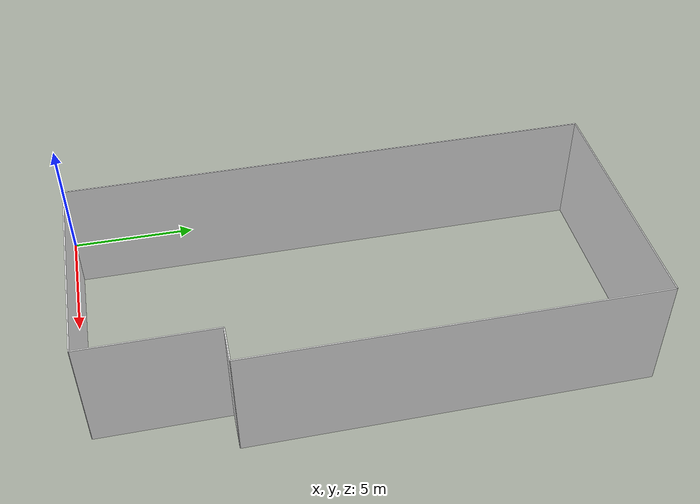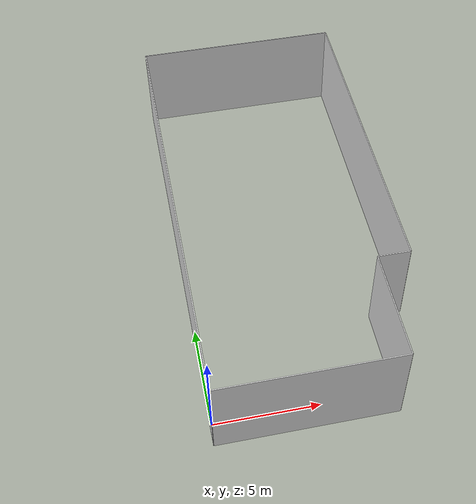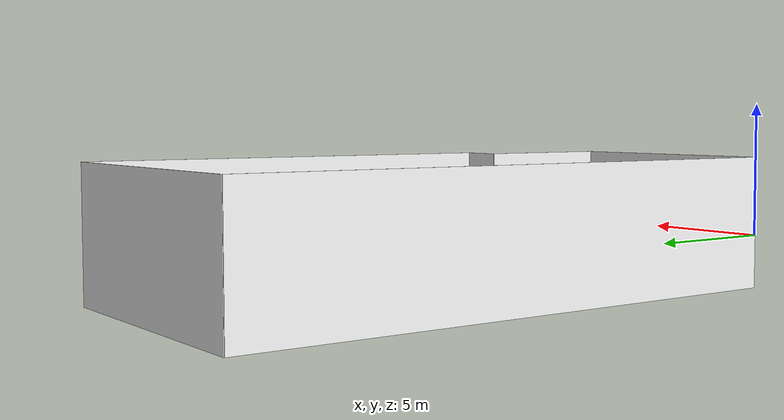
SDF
<?xml version="1.0"?>
<sdf version="1.5">
    <model name="walls">
        <static>true</static>

        <link name="wall_900_hori">
            <pose>4.5 0 0.5 0 0 1.5707</pose>
            <static>true</static>
            <inertial>
                <mass>1.0</mass>
                <inertia>
                    <!-- inertias are tricky to compute -->
                    <ixx>1</ixx> <!-- for a box: ixx = 0.083 * mass * (y*y + z*z) -->
                    <ixy>0</ixy> <!-- for a box: ixy = 0 -->
                    <ixz>0</ixz> <!-- for a box: ixz = 0 -->
                    <iyy>1</iyy> <!-- for a box: iyy = 0.083 * mass * (x*x + z*z) -->
                    <iyz>0</iyz> <!-- for a box: iyz = 0 -->
                    <izz>1</izz> <!-- for a box: izz = 0.083 * mass * (x*x + y*y) -->
                </inertia>
            </inertial>
            <collision name="collision">
                <geometry>
                    <box>
                        <size>0.05 9 5</size>
                    </box>
                </geometry>
            </collision>
            <visual name="visual">
                <geometry>
                    <box>
                        <size>0.05 9 5</size>
                    </box>
                </geometry>
                <material>
                    <script>
                        <uri>file://usr/share/gazebo-11/media/materials/scripts/gazebo.material</uri>
                        <name>Gazebo/White</name>
                    </script>
                </material>
            </visual>
        </link>

        <link name="wall_550_verti">
            <pose>9 2.75 0.5 0 0 0</pose>
            <static>true</static>
            <inertial>
                <mass>1.0</mass>
                <inertia>
                    <!-- inertias are tricky to compute -->
                    <ixx>1</ixx> <!-- for a box: ixx = 0.083 * mass * (y*y + z*z) -->
                    <ixy>0</ixy> <!-- for a box: ixy = 0 -->
                    <ixz>0</ixz> <!-- for a box: ixz = 0 -->
                    <iyy>1</iyy> <!-- for a box: iyy = 0.083 * mass * (x*x + z*z) -->
                    <iyz>0</iyz> <!-- for a box: iyz = 0 -->
                    <izz>1</izz> <!-- for a box: izz = 0.083 * mass * (x*x + y*y) -->
                </inertia>
            </inertial>
            <collision name="collision">
                <geometry>
                    <box>
                        <size>0.05 5.5 5</size>
                    </box>
                </geometry>
            </collision>
            <visual name="visual">
                <geometry>
                    <box>
                        <size>0.05 5.5 5</size>
                    </box>
                </geometry>
                <material>
                    <script>
                        <uri>file://usr/share/gazebo-11/media/materials/scripts/gazebo.material</uri>
                        <name>Gazebo/White</name>
                    </script>
                </material>
            </visual>
        </link>

        <link name="wall_164_hori">
            <pose>9.8225 5.5 0.5 0 0 1.5707</pose>
            <static>true</static>
            <inertial>
                <mass>1.0</mass>
                <inertia>
                    <!-- inertias are tricky to compute -->
                    <ixx>1</ixx> <!-- for a box: ixx = 0.083 * mass * (y*y + z*z) -->
                    <ixy>0</ixy> <!-- for a box: ixy = 0 -->
                    <ixz>0</ixz> <!-- for a box: ixz = 0 -->
                    <iyy>1</iyy> <!-- for a box: iyy = 0.083 * mass * (x*x + z*z) -->
                    <iyz>0</iyz> <!-- for a box: iyz = 0 -->
                    <izz>1</izz> <!-- for a box: izz = 0.083 * mass * (x*x + y*y) -->
                </inertia>
            </inertial>
            <collision name="collision">
                <geometry>
                    <box>
                        <size>0.05 1.645 5</size>
                    </box>
                </geometry>
            </collision>
            <visual name="visual">
                <geometry>
                    <box>
                        <size>0.05 1.645 5</size>
                    </box>
                </geometry>
                <material>
                    <script>
                        <uri>file://usr/share/gazebo-11/media/materials/scripts/gazebo.material</uri>
                        <name>Gazebo/White</name>
                    </script>
                </material>
            </visual>
        </link>

        <link name="wall_1678_verti">
            <pose>10.645 13.8925 0.5 0 0 0</pose>
            <static>true</static>
            <inertial>
                <mass>1.0</mass>
                <inertia>
                    <!-- inertias are tricky to compute -->
                    <ixx>1</ixx> <!-- for a box: ixx = 0.083 * mass * (y*y + z*z) -->
                    <ixy>0</ixy> <!-- for a box: ixy = 0 -->
                    <ixz>0</ixz> <!-- for a box: ixz = 0 -->
                    <iyy>1</iyy> <!-- for a box: iyy = 0.083 * mass * (x*x + z*z) -->
                    <iyz>0</iyz> <!-- for a box: iyz = 0 -->
                    <izz>1</izz> <!-- for a box: izz = 0.083 * mass * (x*x + y*y) -->
                </inertia>
            </inertial>
            <collision name="collision">
                <geometry>
                    <box>
                        <size>0.05 16.785 5</size>
                    </box>
                </geometry>
            </collision>
            <visual name="visual">
                <geometry>
                    <box>
                        <size>0.05 16.785 5</size>
                    </box>
                </geometry>
                <material>
                    <script>
                        <uri>file://usr/share/gazebo-11/media/materials/scripts/gazebo.material</uri>
                        <name>Gazebo/White</name>
                    </script>
                </material>
            </visual>
        </link>

        <link name="wall_1064_hori">
            <pose>5.3225 22.285 0.5 0 0 1.5707</pose>
            <static>true</static>
            <inertial>
                <mass>1.0</mass>
                <inertia>
                    <!-- inertias are tricky to compute -->
                    <ixx>1</ixx> <!-- for a box: ixx = 0.083 * mass * (y*y + z*z) -->
                    <ixy>0</ixy> <!-- for a box: ixy = 0 -->
                    <ixz>0</ixz> <!-- for a box: ixz = 0 -->
                    <iyy>1</iyy> <!-- for a box: iyy = 0.083 * mass * (x*x + z*z) -->
                    <iyz>0</iyz> <!-- for a box: iyz = 0 -->
                    <izz>1</izz> <!-- for a box: izz = 0.083 * mass * (x*x + y*y) -->
                </inertia>
            </inertial>
            <collision name="collision">
                <geometry>
                    <box>
                        <size>0.05 10.645 5</size>
                    </box>
                </geometry>
            </collision>
            <visual name="visual">
                <geometry>
                    <box>
                        <size>0.05 10.645 5</size>
                    </box>
                </geometry>
                <material>
                    <script>
                        <uri>file://usr/share/gazebo-11/media/materials/scripts/gazebo.material</uri>
                        <name>Gazebo/White</name>
                    </script>
                </material>
            </visual>
        </link>

        <link name="wall_2228_verti">
            <pose>0 11.1425 0.5 0 0 0</pose>
            <static>true</static>
            <inertial>
                <mass>1.0</mass>
                <inertia>
                    <!-- inertias are tricky to compute -->
                    <ixx>1</ixx> <!-- for a box: ixx = 0.083 * mass * (y*y + z*z) -->
                    <ixy>0</ixy> <!-- for a box: ixy = 0 -->
                    <ixz>0</ixz> <!-- for a box: ixz = 0 -->
                    <iyy>1</iyy> <!-- for a box: iyy = 0.083 * mass * (x*x + z*z) -->
                    <iyz>0</iyz> <!-- for a box: iyz = 0 -->
                    <izz>1</izz> <!-- for a box: izz = 0.083 * mass * (x*x + y*y) -->
                </inertia>
            </inertial>
            <collision name="collision">
                <geometry>
                    <box>
                        <size>0.05 22.285 5</size>
                    </box>
                </geometry>
            </collision>
            <visual name="visual">
                <geometry>
                    <box>
                        <size>0.05 22.285 5</size>
                    </box>
                </geometry>
                <material>
                    <script>
                        <uri>file://usr/share/gazebo-11/media/materials/scripts/gazebo.material</uri>
                        <name>Gazebo/White</name>
                    </script>
                </material>
            </visual>
        </link>

    </model>
</sdf>
